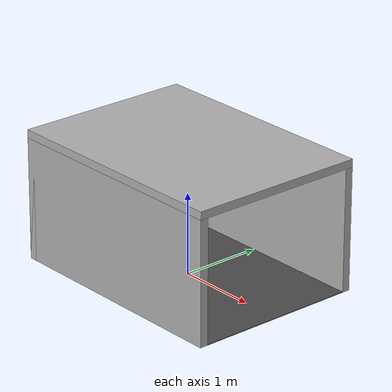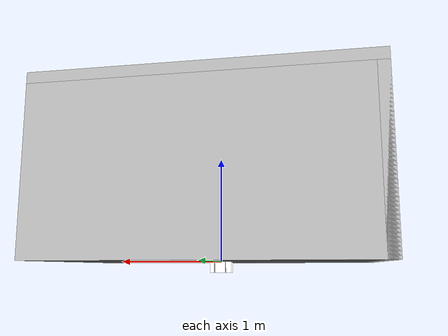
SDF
<?xml version="1.0" ?>
<sdf version="1.8">
  <model name="april_hut">
    <static>true</static>
    <pose>0 0 0 0 0 0</pose>

    <link name="floor_plane">
      <pose>0 0 0.005 0 0 0</pose>
      <visual name="visual">
        <geometry>
          <box>
            <size>3.0 2.0 0.01</size>
          </box>
        </geometry>
        <material>
          <ambient>0.3 0.3 0.3 1</ambient>
          <diffuse>0.3 0.3 0.3 1</diffuse>
          <specular>0.1 0.1 0.1 1</specular>
        </material>
      </visual>
      <collision name="collision">
        <geometry>
          <box>
            <size>3.0 2.0 0.01</size>
          </box>
        </geometry>
      </collision>
    </link>

    <link name="back_wall">
      <pose>-1.45 0 0.75 0 0 0</pose> <visual name="visual">
        <geometry>
          <box>
            <size>0.1 2.2 1.5</size> </box>
        </geometry>
        <material>
          <ambient>0.7 0.7 0.7 1</ambient>
          <diffuse>0.7 0.7 0.7 1</diffuse>
          <specular>0.5 0.5 0.5 1</specular>
        </material>
      </visual>
      <collision name="collision">
        <geometry>
          <box>
            <size>0.1 2.2 1.5</size>
          </box>
        </geometry>
      </collision>
    </link>

    <link name="left_wall">
      <pose>0 1.05 0.75 0 0 0</pose> <visual name="visual">
        <geometry>
          <box>
            <size>3.0 0.1 1.5</size> </box>
        </geometry>
        <material>
          <ambient>0.7 0.7 0.7 1</ambient>
          <diffuse>0.7 0.7 0.7 1</diffuse>
          <specular>0.5 0.5 0.5 1</specular>
        </material>
      </visual>
      <collision name="collision">
        <geometry>
          <box>
            <size>3.0 0.1 1.5</size>
          </box>
        </geometry>
      </collision>
    </link>

    <link name="right_wall">
      <pose>0 -1.05 0.75 0 0 0</pose> <visual name="visual">
        <geometry>
          <box>
            <size>3.0 0.1 1.5</size> </box>
        </geometry>
        <material>
          <ambient>0.7 0.7 0.7 1</ambient>
          <diffuse>0.7 0.7 0.7 1</diffuse>
          <specular>0.5 0.5 0.5 1</specular>
        </material>
      </visual>
      <collision name="collision">
        <geometry>
          <box>
            <size>3.0 0.1 1.5</size>
          </box>
        </geometry>
      </collision>
    </link>

    <link name="roof">
      <pose>0 0 1.55 0 0 0</pose> <visual name="visual">
        <geometry>
          <box>
            <size>3.0 2.2 0.1</size> </box>
        </geometry>
        <material>
          <ambient>0.7 0.7 0.7 1</ambient>
          <diffuse>0.7 0.7 0.7 1</diffuse>
          <specular>0.5 0.5 0.5 1</specular>
        </material>
      </visual>
      <collision name="collision">
        <geometry>
          <box>
            <size>3.0 2.2 0.1</size>
          </box>
        </geometry>
      </collision>
    </link>

    <include>
      <name>tag_inner_back</name>
      <uri>model://Apriltag36_11_00001</uri>
      <pose relative_to="back_wall">0.051 0 0 0 -1.5708 0</pose> </include>

    <include>
      <name>tag_outer_back</name>
      <uri>model://Apriltag36_11_00002</uri>
      <pose relative_to="back_wall">-0.051 0 0 0 1.5708 0</pose> </include>

    <include>
      <name>tag_outer_left</name>
      <uri>model://Apriltag36_11_00003</uri>
      <pose relative_to="left_wall">0 0.051 0 1.5708 0 0</pose> </include>

    <include>
      <name>tag_outer_right</name>
      <uri>model://Apriltag36_11_00004</uri>
      <pose relative_to="right_wall">0 -0.051 0 -1.5708 0 0</pose> </include>

  </model>
</sdf>

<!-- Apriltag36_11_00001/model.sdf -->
<sdf version="1.9">
  <model name="tag36_11_00001">
    <static>true</static>
    <link name="link">
      <visual name="visual">
        <geometry>
          <box>
            <size>0.2 0.2 0.001</size>
          </box>
        </geometry>
        <material>
        	<ambient>1 1 1 1</ambient>
        	<diffuse>1 1 1 1</diffuse>
        	<specular>0.1 0.1 0.1 1</specular>
        	<!-- Neuer Teil: -->
        	<pbr>
            		<metal>
              			<albedo_map>model://Apriltag36_11_00001/materials/textures/tag36_11_00001.png</albedo_map>
              			<roughness>0.5</roughness>
              			<metalness>0.0</metalness>
            		</metal>
          	</pbr>

        </material>
      </visual>
      <collision name="collision">
        <geometry>
          <box>
            <size>0.2 0.2 0.001</size>
          </box>
        </geometry>
      </collision>
    </link>
  </model>
</sdf>

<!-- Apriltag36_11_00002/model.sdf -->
<sdf version="1.9">
  <model name="tag36_11_00002">
    <static>true</static>
    <link name="link">
      <visual name="visual">
        <geometry>
          <box>
            <size>0.2 0.2 0.001</size>
          </box>
        </geometry>
        <material>
        	<ambient>1 1 1 1</ambient>
        	<diffuse>1 1 1 1</diffuse>
        	<specular>0.1 0.1 0.1 1</specular>
        	<!-- Neuer Teil: -->
        	<pbr>
            		<metal>
              			<albedo_map>model://Apriltag36_11_00002/materials/textures/tag36_11_00002.png</albedo_map>
              			<roughness>0.5</roughness>
              			<metalness>0.0</metalness>
            		</metal>
          	</pbr>

        </material>
      </visual>
      <collision name="collision">
        <geometry>
          <box>
            <size>0.2 0.2 0.001</size>
          </box>
        </geometry>
      </collision>
    </link>
  </model>
</sdf>

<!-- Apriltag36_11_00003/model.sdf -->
<sdf version="1.9">
  <model name="tag36_11_00003">
    <static>true</static>
    <link name="link">
      <visual name="visual">
        <geometry>
          <box>
            <size>0.2 0.2 0.001</size>
          </box>
        </geometry>
        <material>
        	<ambient>1 1 1 1</ambient>
        	<diffuse>1 1 1 1</diffuse>
        	<specular>0.1 0.1 0.1 1</specular>
        	<!-- Neuer Teil: -->
        	<pbr>
            		<metal>
              			<albedo_map>model://Apriltag36_11_00003/materials/textures/tag36_11_00003.png</albedo_map>
              			<roughness>0.5</roughness>
              			<metalness>0.0</metalness>
            		</metal>
          	</pbr>

        </material>
      </visual>
      <collision name="collision">
        <geometry>
          <box>
            <size>0.2 0.2 0.001</size>
          </box>
        </geometry>
      </collision>
    </link>
  </model>
</sdf>

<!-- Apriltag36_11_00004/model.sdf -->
<sdf version="1.9">
  <model name="tag36_11_00004">
    <static>true</static>
    <link name="link">
      <visual name="visual">
        <geometry>
          <box>
            <size>0.2 0.2 0.001</size>
          </box>
        </geometry>
        <material>
        	<ambient>1 1 1 1</ambient>
        	<diffuse>1 1 1 1</diffuse>
        	<specular>0.1 0.1 0.1 1</specular>
        	<!-- Neuer Teil: -->
        	<pbr>
            		<metal>
              			<albedo_map>model://Apriltag36_11_00004/materials/textures/tag36_11_00004.png</albedo_map>
              			<roughness>0.5</roughness>
              			<metalness>0.0</metalness>
            		</metal>
          	</pbr>

        </material>
      </visual>
      <collision name="collision">
        <geometry>
          <box>
            <size>0.2 0.2 0.001</size>
          </box>
        </geometry>
      </collision>
    </link>
  </model>
</sdf>
